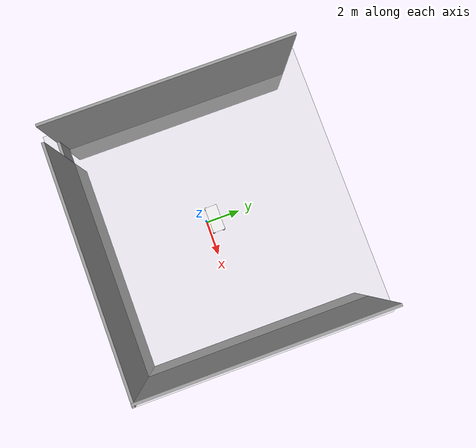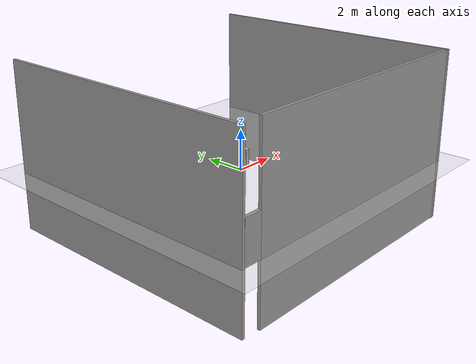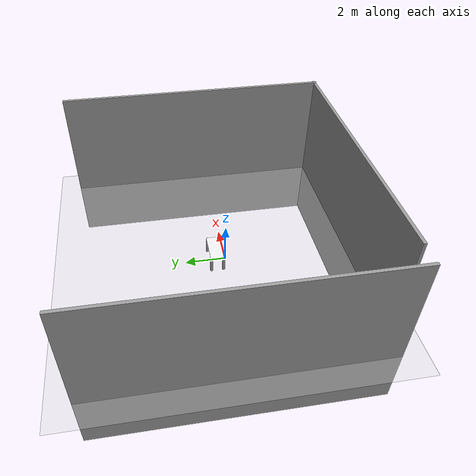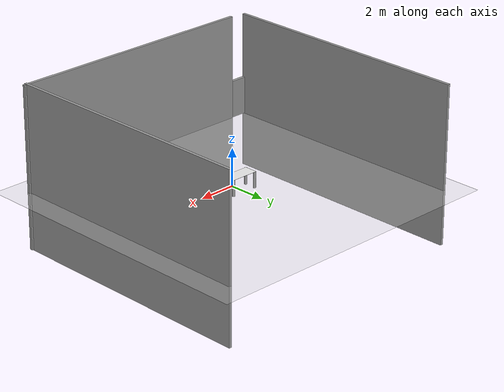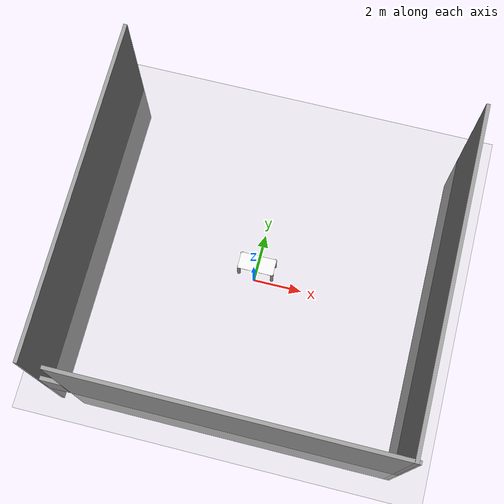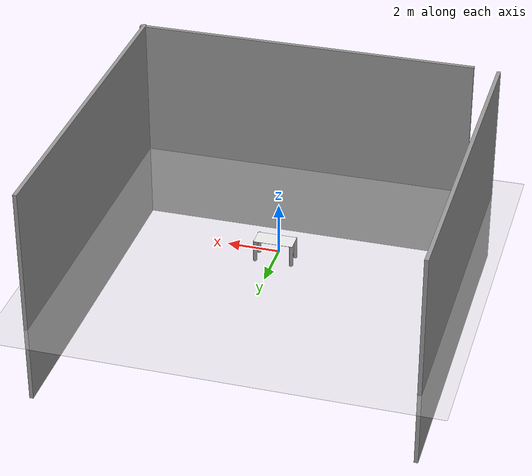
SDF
<sdf version="1.6">
 <world name="default">
  <model name="ground_plane">
   <static>1</static>
   <link name="link">
    <collision name="collision">
     <geometry><plane><normal>0 0 1</normal><size>100 100</size></plane></geometry>
     <surface>
      <contact><collide_bitmask>65535</collide_bitmask></contact>
      <friction><ode><mu>100</mu><mu2>50</mu2></ode></friction>
     </surface>
    </collision>
    <visual name="visual">
     <cast_shadows>0</cast_shadows>
     <geometry><plane><normal>0 0 1</normal><size>100 100</size></plane></geometry>
     <material>
      <script><uri>file://media/materials/scripts/gazebo.material</uri><name>Gazebo/Grey</name></script>
     </material>
    </visual>
   </link>
  </model>
  <gravity>0 0 -9.8</gravity>
  <magnetic_field>6e-06 2.3e-05 -4.2e-05</magnetic_field>
  <atmosphere type="adiabatic"/>
  <physics name="default_physics" default="0" type="ode">
   <max_step_size>0.001</max_step_size>
   <real_time_factor>1</real_time_factor>
   <real_time_update_rate>1000</real_time_update_rate>
  </physics>
  <scene><ambient>0.4 0.4 0.4 1</ambient><background>0.7 0.7 0.7 1</background><shadows>1</shadows></scene>
  <spherical_coordinates>
   <surface_model>EARTH_WGS84</surface_model>
   <latitude_deg>0</latitude_deg>
   <longitude_deg>0</longitude_deg>
   <elevation>0</elevation>
   <heading_deg>0</heading_deg>
  </spherical_coordinates>
  <model name="zhuozi">
   <link name="link_0">
    <pose>0.7 0.2 0.4025 0 -0 0</pose>
    <inertial>
     <mass>20</mass>
     <inertia><ixx>0.145833</ixx><ixy>0</ixy><ixz>0</ixz><iyy>0.145833</iyy><iyz>0</iyz><izz>0.125</izz></inertia>
    </inertial>
    <visual name="visual">
     <geometry><cylinder><radius>0.07</radius><length>0.85</length></cylinder></geometry>
     <material>
      <lighting>1</lighting>
      <script><uri>file://media/materials/scripts/gazebo.material</uri><name>Gazebo/Grey</name></script>
      <shader type="pixel"><normal_map>__default__</normal_map></shader>
      <ambient>0.3 0.3 0.3 1</ambient>
      <diffuse>0.7 0.7 0.7 1</diffuse>
      <specular>0.01 0.01 0.01 1</specular>
      <emissive>0 0 0 1</emissive>
     </material>
    </visual>
    <collision name="collision">
     <geometry><cylinder><radius>0.05</radius><length>0.85</length></cylinder></geometry>
     <surface>
      <friction>
       <ode><mu>100</mu><mu2>100</mu2><fdir1>0 0 0</fdir1><slip1>0</slip1><slip2>0</slip2></ode>
       <torsional>
        <coefficient>1</coefficient>
        <patch_radius>0</patch_radius>
        <surface_radius>0</surface_radius>
        <use_patch_radius>1</use_patch_radius>
        <ode><slip>0</slip></ode>
       </torsional>
      </friction>
      <bounce><restitution_coefficient>0</restitution_coefficient><threshold>1e+06</threshold></bounce>
      <contact>
       <collide_without_contact>0</collide_without_contact>
       <collide_without_contact_bitmask>1</collide_without_contact_bitmask>
       <collide_bitmask>1</collide_bitmask>
       <ode>
        <soft_cfm>0</soft_cfm>
        <soft_erp>0.2</soft_erp>
        <kp>1e+13</kp>
        <kd>1</kd>
        <max_vel>0</max_vel>
        <min_depth>0</min_depth>
       </ode>
       <bullet>
        <split_impulse>1</split_impulse>
        <split_impulse_penetration_threshold>-0.01</split_impulse_penetration_threshold>
        <soft_cfm>0</soft_cfm>
        <soft_erp>0.2</soft_erp>
        <kp>1e+13</kp>
        <kd>1</kd>
       </bullet>
      </contact>
     </surface>
    </collision>
   </link>
   <link name="link_0_clone">
    <pose>-0.7 0.2 0.4025 0 -0 0</pose>
    <inertial>
     <mass>20</mass>
     <inertia><ixx>0.145833</ixx><ixy>0</ixy><ixz>0</ixz><iyy>0.145833</iyy><iyz>0</iyz><izz>0.125</izz></inertia>
    </inertial>
    <visual name="visual">
     <geometry><cylinder><radius>0.07</radius><length>0.85</length></cylinder></geometry>
     <material>
      <lighting>1</lighting>
      <script><uri>file://media/materials/scripts/gazebo.material</uri><name>Gazebo/Grey</name></script>
      <shader type="pixel"><normal_map>__default__</normal_map></shader>
      <ambient>0.3 0.3 0.3 1</ambient>
      <diffuse>0.7 0.7 0.7 1</diffuse>
      <specular>0.01 0.01 0.01 1</specular>
      <emissive>0 0 0 1</emissive>
     </material>
    </visual>
    <collision name="collision">
     <geometry><cylinder><radius>0.05</radius><length>0.85</length></cylinder></geometry>
     <surface>
      <friction>
       <ode><mu>1</mu><mu2>1</mu2><fdir1>0 0 0</fdir1><slip1>0</slip1><slip2>0</slip2></ode>
       <torsional>
        <coefficient>1</coefficient>
        <patch_radius>0</patch_radius>
        <surface_radius>0</surface_radius>
        <use_patch_radius>1</use_patch_radius>
        <ode><slip>0</slip></ode>
       </torsional>
      </friction>
      <bounce><restitution_coefficient>0</restitution_coefficient><threshold>1e+06</threshold></bounce>
      <contact>
       <collide_without_contact>0</collide_without_contact>
       <collide_without_contact_bitmask>1</collide_without_contact_bitmask>
       <collide_bitmask>1</collide_bitmask>
       <ode>
        <soft_cfm>0</soft_cfm>
        <soft_erp>0.2</soft_erp>
        <kp>1e+13</kp>
        <kd>1</kd>
        <max_vel>0.01</max_vel>
        <min_depth>0</min_depth>
       </ode>
       <bullet>
        <split_impulse>1</split_impulse>
        <split_impulse_penetration_threshold>-0.01</split_impulse_penetration_threshold>
        <soft_cfm>0</soft_cfm>
        <soft_erp>0.2</soft_erp>
        <kp>1e+13</kp>
        <kd>1</kd>
       </bullet>
      </contact>
     </surface>
    </collision>
   </link>
   <link name="link_0_clone_0">
    <pose>0.7 0.8 0.4025 0 -0 0</pose>
    <inertial>
     <mass>20</mass>
     <inertia><ixx>0.145833</ixx><ixy>0</ixy><ixz>0</ixz><iyy>0.145833</iyy><iyz>0</iyz><izz>0.125</izz></inertia>
    </inertial>
    <visual name="visual">
     <geometry><cylinder><radius>0.07</radius><length>0.85</length></cylinder></geometry>
     <material>
      <lighting>1</lighting>
      <script><uri>file://media/materials/scripts/gazebo.material</uri><name>Gazebo/Grey</name></script>
      <shader type="pixel"><normal_map>__default__</normal_map></shader>
      <ambient>0.3 0.3 0.3 1</ambient>
      <diffuse>0.7 0.7 0.7 1</diffuse>
      <specular>0.01 0.01 0.01 1</specular>
      <emissive>0 0 0 1</emissive>
     </material>
    </visual>
    <collision name="collision">
     <geometry><cylinder><radius>0.05</radius><length>0.85</length></cylinder></geometry>
     <surface>
      <friction>
       <ode><mu>1</mu><mu2>1</mu2><fdir1>0 0 0</fdir1><slip1>0</slip1><slip2>0</slip2></ode>
       <torsional>
        <coefficient>1</coefficient>
        <patch_radius>0</patch_radius>
        <surface_radius>0</surface_radius>
        <use_patch_radius>1</use_patch_radius>
        <ode><slip>0</slip></ode>
       </torsional>
      </friction>
      <bounce><restitution_coefficient>0</restitution_coefficient><threshold>1e+06</threshold></bounce>
      <contact>
       <collide_without_contact>0</collide_without_contact>
       <collide_without_contact_bitmask>1</collide_without_contact_bitmask>
       <collide_bitmask>1</collide_bitmask>
       <ode>
        <soft_cfm>0</soft_cfm>
        <soft_erp>0.2</soft_erp>
        <kp>1e+13</kp>
        <kd>1</kd>
        <max_vel>0.01</max_vel>
        <min_depth>0</min_depth>
       </ode>
       <bullet>
        <split_impulse>1</split_impulse>
        <split_impulse_penetration_threshold>-0.01</split_impulse_penetration_threshold>
        <soft_cfm>0</soft_cfm>
        <soft_erp>0.2</soft_erp>
        <kp>1e+13</kp>
        <kd>1</kd>
       </bullet>
      </contact>
     </surface>
    </collision>
   </link>
   <link name="link_0_clone_1">
    <pose>-0.7 0.8 0.4025 0 -0 0</pose>
    <inertial>
     <mass>20</mass>
     <inertia><ixx>0.145833</ixx><ixy>0</ixy><ixz>0</ixz><iyy>0.145833</iyy><iyz>0</iyz><izz>0.125</izz></inertia>
     <pose>-0.7 0.8 0.295 0 -0 0</pose>
    </inertial>
    <visual name="visual">
     <geometry><cylinder><radius>0.07</radius><length>0.85</length></cylinder></geometry>
     <material>
      <lighting>1</lighting>
      <script><uri>file://media/materials/scripts/gazebo.material</uri><name>Gazebo/Grey</name></script>
      <shader type="pixel"><normal_map>__default__</normal_map></shader>
      <ambient>0.3 0.3 0.3 1</ambient>
      <diffuse>0.7 0.7 0.7 1</diffuse>
      <specular>0.01 0.01 0.01 1</specular>
      <emissive>0 0 0 1</emissive>
     </material>
    </visual>
    <collision name="collision">
     <geometry><cylinder><radius>0.05</radius><length>0.85</length></cylinder></geometry>
     <surface>
      <friction>
       <ode><mu>1</mu><mu2>1</mu2><fdir1>0 0 0</fdir1><slip1>0</slip1><slip2>0</slip2></ode>
       <torsional>
        <coefficient>1</coefficient>
        <patch_radius>0</patch_radius>
        <surface_radius>0</surface_radius>
        <use_patch_radius>1</use_patch_radius>
        <ode><slip>0</slip></ode>
       </torsional>
      </friction>
      <bounce><restitution_coefficient>0</restitution_coefficient><threshold>1e+06</threshold></bounce>
      <contact>
       <collide_without_contact>0</collide_without_contact>
       <collide_without_contact_bitmask>1</collide_without_contact_bitmask>
       <collide_bitmask>1</collide_bitmask>
       <ode>
        <soft_cfm>0</soft_cfm>
        <soft_erp>0.2</soft_erp>
        <kp>1e+13</kp>
        <kd>1</kd>
        <max_vel>0.01</max_vel>
        <min_depth>0</min_depth>
       </ode>
       <bullet>
        <split_impulse>1</split_impulse>
        <split_impulse_penetration_threshold>-0.01</split_impulse_penetration_threshold>
        <soft_cfm>0</soft_cfm>
        <soft_erp>0.2</soft_erp>
        <kp>1e+13</kp>
        <kd>1</kd>
       </bullet>
      </contact>
     </surface>
    </collision>
   </link>
   <link name="link_1">
    <pose>0 0.5 0.825 0 -0 0</pose>
    <inertial>
     <mass>1</mass>
     <inertia>
      <ixx>0.166667</ixx>
      <ixy>0</ixy>
      <ixz>0</ixz>
      <iyy>0.166667</iyy>
      <iyz>0</iyz>
      <izz>0.166667</izz>
     </inertia>
    </inertial>
    <visual name="visual">
     <geometry><box><size>1.5 0.7 0.01</size></box></geometry>
     <material>
      <lighting>1</lighting>
      <script><uri>file://media/materials/scripts/gazebo.material</uri><name>Gazebo/White</name></script>
      <shader type="pixel"><normal_map>__default__</normal_map></shader>
      <ambient>1 1 1 1</ambient>
      <diffuse>0.7 0.7 0.7 1</diffuse>
      <specular>0.01 0.01 0.01 1</specular>
      <emissive>0 0 0 1</emissive>
     </material>
    </visual>
    <collision name="collision">
     <geometry><box><size>1.5 0.7 0.01</size></box></geometry>
     <surface>
      <friction>
       <ode><mu>1</mu><mu2>1</mu2><fdir1>0 0 0</fdir1><slip1>0</slip1><slip2>0</slip2></ode>
       <torsional>
        <coefficient>1</coefficient>
        <patch_radius>0</patch_radius>
        <surface_radius>0</surface_radius>
        <use_patch_radius>1</use_patch_radius>
        <ode><slip>0</slip></ode>
       </torsional>
      </friction>
      <bounce><restitution_coefficient>0</restitution_coefficient><threshold>1e+06</threshold></bounce>
      <contact>
       <collide_without_contact>0</collide_without_contact>
       <collide_without_contact_bitmask>1</collide_without_contact_bitmask>
       <collide_bitmask>1</collide_bitmask>
       <ode>
        <soft_cfm>0</soft_cfm>
        <soft_erp>0.2</soft_erp>
        <kp>1e+13</kp>
        <kd>1</kd>
        <max_vel>0</max_vel>
        <min_depth>0</min_depth>
       </ode>
       <bullet>
        <split_impulse>1</split_impulse>
        <split_impulse_penetration_threshold>-0.01</split_impulse_penetration_threshold>
        <soft_cfm>0</soft_cfm>
        <soft_erp>0.2</soft_erp>
        <kp>1e+13</kp>
        <kd>1</kd>
       </bullet>
      </contact>
     </surface>
    </collision>
   </link>
   <joint name="link_0_JOINT_0" type="fixed">
    <parent>link_0</parent>
    <child>link_1</child>
    <pose>0.7 -0.3 0 0 -0 0</pose>
    <physics>
     <ode><limit><cfm>0</cfm><erp>0.2</erp></limit><suspension><cfm>0</cfm><erp>0.2</erp></suspension></ode>
    </physics>
   </joint>
   <joint name="link_0_clone_0_JOINT_2" type="fixed">
    <parent>link_0_clone_0</parent>
    <child>link_1</child>
    <pose>0.7 0.3 0 0 -0 0</pose>
    <physics>
     <ode><limit><cfm>0</cfm><erp>0.2</erp></limit><suspension><cfm>0</cfm><erp>0.2</erp></suspension></ode>
    </physics>
   </joint>
   <joint name="link_0_clone_1_JOINT_3" type="fixed">
    <parent>link_0_clone_1</parent>
    <child>link_1</child>
    <pose>-0.7 0.3 0 0 -0 0</pose>
    <physics>
     <ode><limit><cfm>0</cfm><erp>0.2</erp></limit><suspension><cfm>0</cfm><erp>0.2</erp></suspension></ode>
    </physics>
   </joint>
   <joint name="link_0_clone_JOINT_1" type="fixed">
    <parent>link_0_clone</parent>
    <child>link_1</child>
    <pose>-0.7 -0.3 0 0 -0 0</pose>
    <physics>
     <ode><limit><cfm>0</cfm><erp>0.2</erp></limit><suspension><cfm>0</cfm><erp>0.2</erp></suspension></ode>
    </physics>
   </joint>
   <static>1</static>
  </model>
  <model name="room_for_grasping">
   <link name="Door_0">
    <pose>-6.69151 -6.78114 0 0 -0 0</pose>
    <visual name="Door_0_Visual">
     <pose>0 0 1 0 -0 0</pose>
     <geometry><box><size>0.9 0.17 2</size></box></geometry>
     <material>
      <script><uri>file://media/materials/scripts/gazebo.material</uri><name>Gazebo/Grey</name></script>
      <shader type="pixel"/>
      <ambient>0.3 0.3 0.3 1</ambient>
      <diffuse>0.7 0.7 0.7 1</diffuse>
      <specular>0.01 0.01 0.01 1</specular>
      <emissive>0 0 0 1</emissive>
     </material>
    </visual>
    <collision name="Door_0_Collision">
     <pose>0 0 1 0 -0 0</pose>
     <geometry><box><size>0.9 0.17 2</size></box></geometry>
     <surface>
      <friction>
       <ode><mu>1</mu><mu2>1</mu2><fdir1>0 0 0</fdir1><slip1>0</slip1><slip2>0</slip2></ode>
       <torsional>
        <coefficient>1</coefficient>
        <patch_radius>0</patch_radius>
        <surface_radius>0</surface_radius>
        <use_patch_radius>1</use_patch_radius>
        <ode><slip>0</slip></ode>
       </torsional>
      </friction>
      <bounce><restitution_coefficient>0</restitution_coefficient><threshold>1e+06</threshold></bounce>
      <contact>
       <collide_without_contact>0</collide_without_contact>
       <collide_without_contact_bitmask>1</collide_without_contact_bitmask>
       <collide_bitmask>1</collide_bitmask>
       <ode>
        <soft_cfm>0</soft_cfm>
        <soft_erp>0.2</soft_erp>
        <kp>1e+13</kp>
        <kd>1</kd>
        <max_vel>0.01</max_vel>
        <min_depth>0</min_depth>
       </ode>
       <bullet>
        <split_impulse>1</split_impulse>
        <split_impulse_penetration_threshold>-0.01</split_impulse_penetration_threshold>
        <soft_cfm>0</soft_cfm>
        <soft_erp>0.2</soft_erp>
        <kp>1e+13</kp>
        <kd>1</kd>
       </bullet>
      </contact>
     </surface>
    </collision>
   </link>
   <link name="Wall_4">
    <pose>7.09243 0 0 0 -0 1.5708</pose>
    <inertial>
     <inertia><ixx>0</ixx><ixy>0</ixy><ixz>0</ixz><iyy>0</iyy><iyz>0</iyz><izz>0</izz></inertia>
     <mass>0</mass>
    </inertial>
    <visual name="Wall_4_Visual">
     <pose>0 0 1.25 0 -0 0</pose>
     <geometry><box><size>13.7123 0.15 8.6364</size></box></geometry>
     <material>
      <script><uri>file://media/materials/scripts/gazebo.material</uri><name>Gazebo/Grey</name></script>
      <ambient>1 1 1 1</ambient>
      <shader type="pixel"/>
      <diffuse>0.7 0.7 0.7 1</diffuse>
      <specular>0.01 0.01 0.01 1</specular>
      <emissive>0 0 0 1</emissive>
     </material>
     <meta><layer>0</layer></meta>
    </visual>
    <collision name="Wall_4_Collision">
     <pose>0 0 1.25 0 -0 0</pose>
     <geometry><box><size>13.7123 0.15 8.6364</size></box></geometry>
     <surface>
      <friction>
       <ode><mu>1</mu><mu2>1</mu2><fdir1>0 0 0</fdir1><slip1>0</slip1><slip2>0</slip2></ode>
       <torsional>
        <coefficient>1</coefficient>
        <patch_radius>0</patch_radius>
        <surface_radius>0</surface_radius>
        <use_patch_radius>1</use_patch_radius>
        <ode><slip>0</slip></ode>
       </torsional>
      </friction>
      <bounce><restitution_coefficient>0</restitution_coefficient><threshold>1e+06</threshold></bounce>
      <contact>
       <collide_without_contact>0</collide_without_contact>
       <collide_without_contact_bitmask>1</collide_without_contact_bitmask>
       <collide_bitmask>1</collide_bitmask>
       <ode>
        <soft_cfm>0</soft_cfm>
        <soft_erp>0.2</soft_erp>
        <kp>1e+13</kp>
        <kd>1</kd>
        <max_vel>0.01</max_vel>
        <min_depth>0</min_depth>
       </ode>
       <bullet>
        <split_impulse>1</split_impulse>
        <split_impulse_penetration_threshold>-0.01</split_impulse_penetration_threshold>
        <soft_cfm>0</soft_cfm>
        <soft_erp>0.2</soft_erp>
        <kp>1e+13</kp>
        <kd>1</kd>
       </bullet>
      </contact>
     </surface>
    </collision>
   </link>
   <link name="Wall_6">
    <pose>-7.18681 0 0 0 0 -1.5708</pose>
    <inertial>
     <inertia><ixx>0</ixx><ixy>0</ixy><ixz>0</ixz><iyy>0</iyy><iyz>0</iyz><izz>0</izz></inertia>
     <mass>0</mass>
    </inertial>
    <visual name="Wall_6_Visual">
     <pose>0 0 1.25 0 -0 0</pose>
     <geometry><box><size>13.7123 0.15 8.38243</size></box></geometry>
     <material>
      <script><uri>file://media/materials/scripts/gazebo.material</uri><name>Gazebo/Grey</name></script>
      <ambient>1 1 1 1</ambient>
      <shader type="pixel"/>
      <diffuse>0.7 0.7 0.7 1</diffuse>
      <specular>0.01 0.01 0.01 1</specular>
      <emissive>0 0 0 1</emissive>
     </material>
     <meta><layer>0</layer></meta>
    </visual>
    <collision name="Wall_6_Collision">
     <pose>0 0 1.25 0 -0 0</pose>
     <geometry><box><size>13.7123 0.15 8.38243</size></box></geometry>
     <surface>
      <friction>
       <ode><mu>1</mu><mu2>1</mu2><fdir1>0 0 0</fdir1><slip1>0</slip1><slip2>0</slip2></ode>
       <torsional>
        <coefficient>1</coefficient>
        <patch_radius>0</patch_radius>
        <surface_radius>0</surface_radius>
        <use_patch_radius>1</use_patch_radius>
        <ode><slip>0</slip></ode>
       </torsional>
      </friction>
      <bounce><restitution_coefficient>0</restitution_coefficient><threshold>1e+06</threshold></bounce>
      <contact>
       <collide_without_contact>0</collide_without_contact>
       <collide_without_contact_bitmask>1</collide_without_contact_bitmask>
       <collide_bitmask>1</collide_bitmask>
       <ode>
        <soft_cfm>0</soft_cfm>
        <soft_erp>0.2</soft_erp>
        <kp>1e+13</kp>
        <kd>1</kd>
        <max_vel>0.01</max_vel>
        <min_depth>0</min_depth>
       </ode>
       <bullet>
        <split_impulse>1</split_impulse>
        <split_impulse_penetration_threshold>-0.01</split_impulse_penetration_threshold>
        <soft_cfm>0</soft_cfm>
        <soft_erp>0.2</soft_erp>
        <kp>1e+13</kp>
        <kd>1</kd>
       </bullet>
      </contact>
     </surface>
    </collision>
   </link>
   <link name="Wall_8">
    <pose>0.511814 -6.78114 0 0 -0 0</pose>
    <inertial>
     <inertia><ixx>0</ixx><ixy>0</ixy><ixz>0</ixz><iyy>0</iyy><iyz>0</iyz><izz>0</izz></inertia>
     <mass>0</mass>
    </inertial>
    <visual name="Wall_8_Visual">
     <pose>0 0 1.25 0 -0 0</pose>
     <geometry><box><size>13.5 0.15 8.5706</size></box></geometry>
     <material>
      <script><uri>file://media/materials/scripts/gazebo.material</uri><name>Gazebo/Grey</name></script>
      <ambient>0 0 0 1</ambient>
      <shader type="pixel"/>
      <diffuse>0.7 0.7 0.7 1</diffuse>
      <specular>0.01 0.01 0.01 1</specular>
      <emissive>0 0 0 1</emissive>
     </material>
     <meta><layer>0</layer></meta>
    </visual>
    <collision name="Wall_8_Collision">
     <pose>0 0 1.25 0 -0 0</pose>
     <geometry><box><size>13.5 0.15 8.5706</size></box></geometry>
     <surface>
      <friction>
       <ode><mu>1</mu><mu2>1</mu2><fdir1>0 0 0</fdir1><slip1>0</slip1><slip2>0</slip2></ode>
       <torsional>
        <coefficient>1</coefficient>
        <patch_radius>0</patch_radius>
        <surface_radius>0</surface_radius>
        <use_patch_radius>1</use_patch_radius>
        <ode><slip>0</slip></ode>
       </torsional>
      </friction>
      <bounce><restitution_coefficient>0</restitution_coefficient><threshold>1e+06</threshold></bounce>
      <contact>
       <collide_without_contact>0</collide_without_contact>
       <collide_without_contact_bitmask>1</collide_without_contact_bitmask>
       <collide_bitmask>1</collide_bitmask>
       <ode>
        <soft_cfm>0</soft_cfm>
        <soft_erp>0.2</soft_erp>
        <kp>1e+13</kp>
        <kd>1</kd>
        <max_vel>0.01</max_vel>
        <min_depth>0</min_depth>
       </ode>
       <bullet>
        <split_impulse>1</split_impulse>
        <split_impulse_penetration_threshold>-0.01</split_impulse_penetration_threshold>
        <soft_cfm>0</soft_cfm>
        <soft_erp>0.2</soft_erp>
        <kp>1e+13</kp>
        <kd>1</kd>
       </bullet>
      </contact>
     </surface>
    </collision>
   </link>
   <static>1</static>
   <pose>0.213191 0.512442 0 0 -0 0</pose>
  </model>
 </world>
</sdf>
